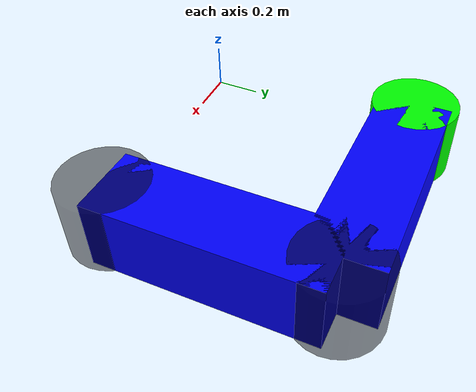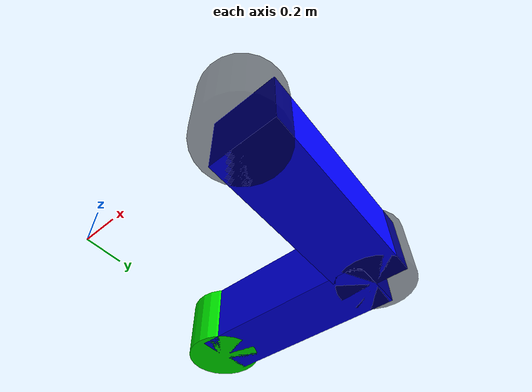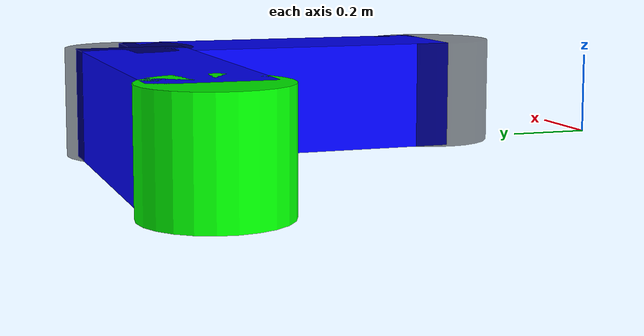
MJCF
<mujoco>
    <option timestep="0.00001" />
    <actuator>
        <motor gear="2500" joint="shoulder_pitch" name="shoulder_pitch" ctrlrange="-100 100" ctrllimited="true"/>
        <motor gear="2500" joint="shoulder_pitch11" name="shoulder_pitch11" ctrlrange="-100 100" ctrllimited="true"/>
    </actuator>
    <asset>
        <material name="blue" rgba="0 0 1 1" />
        <material name="green" rgba="0 1 0 1" />
        <material name="red" rgba="1 0 0 1" />
        <material name="white" rgba="1 1 1 1" />
        <material name="black" rgba="0 0 0 .5" />
    </asset>
    <worldbody>
        <geom type="plane" size="10 10 0.1" pos="0 0 -5" rgba=".9 0 0 1"  material = "white"/>
        <light diffuse=".5 .5 .5" pos="0 0 3" dir="0 0 -1" />
        <body name="link_1" pos="1 0 0" euler = "0 0 0">
            <joint name="shoulder_pitch" pos="0 0 0" axis="0 0 1" />
            <geom type="cylinder" size=".198 .165" pos="0 0 0" mass="65" euler="0 0 0" material="black" />
            <geom type="box" size=".165 .165   .5" pos="0 .5 0" mass="20" euler="90 0 0" material="blue" />
            <body name="link_2" pos="0 1 0" euler="0 0 0">
            <joint name="shoulder_pitch11" pos="0 0 0" axis="0 0 1" />
                <geom type="cylinder" size=".198    .165" pos="0 0 0" mass="65" euler="0 0 0" material="black" />
                <geom type="box" size=".165 .165   .5" pos="-0.5 0 0" mass="20" euler="90 90 0" material="blue" />
            <body name="actuator" pos="-1 0 0" euler="0 0 0">
                <joint name="shoulder_pitch12" pos="0 0 0" axis="0 0 1" />
                    <geom type="cylinder" name = "actor" size=".198    .165" pos="0 0 0" mass="65" euler="0 0 0" material="green" />

                    </body>
                </body>
                </body>
				</worldbody>
    <equality>
		<connect name="kinematic_link" active="true" body1="actuator" body2="link_2" anchor="0 0 0"/>
		<connect name="kinematic_link2" active="true" body1="link_1" body2="link_2" anchor="0 0 0"/>

    </equality>
    <contact>

    </contact>
</mujoco>
